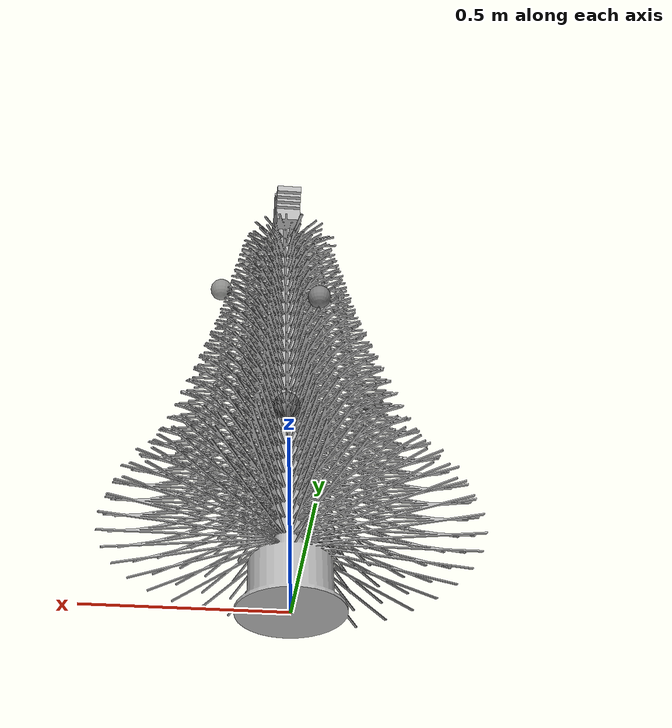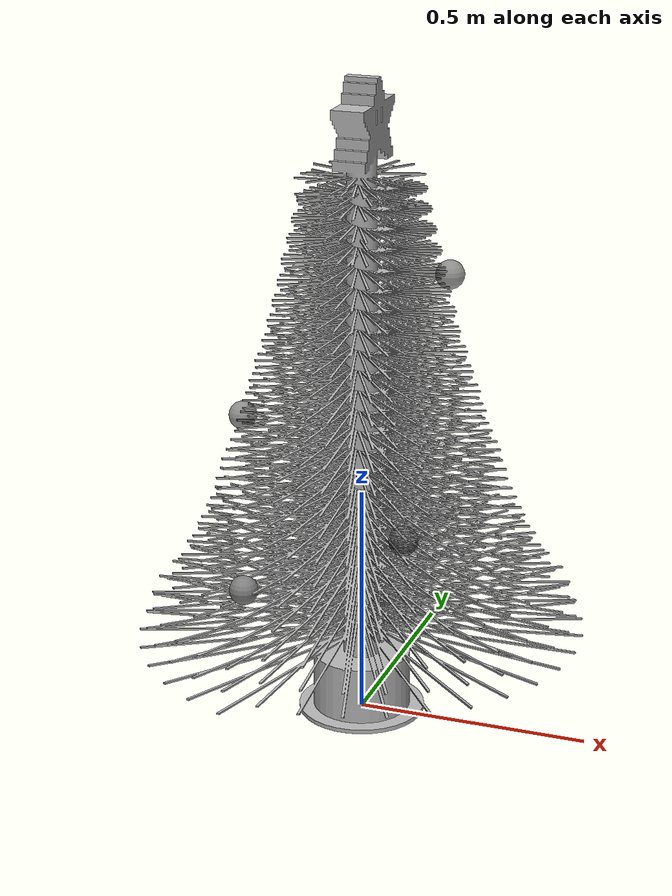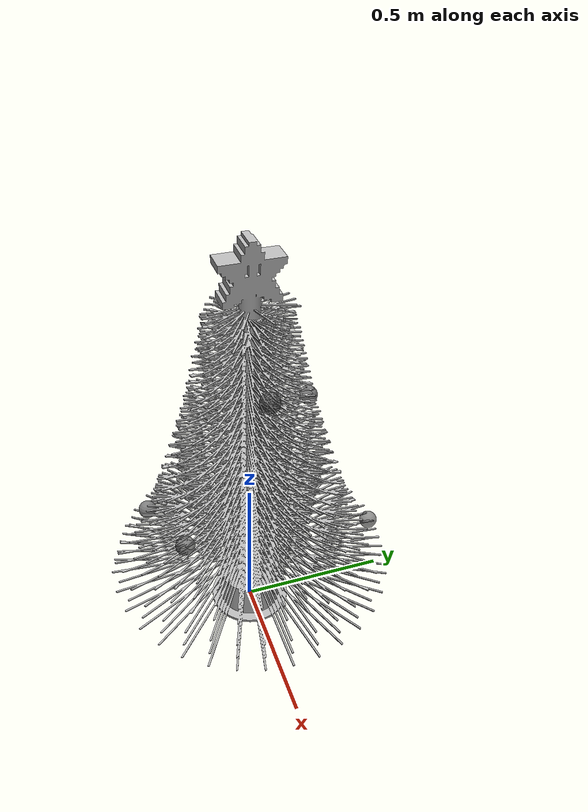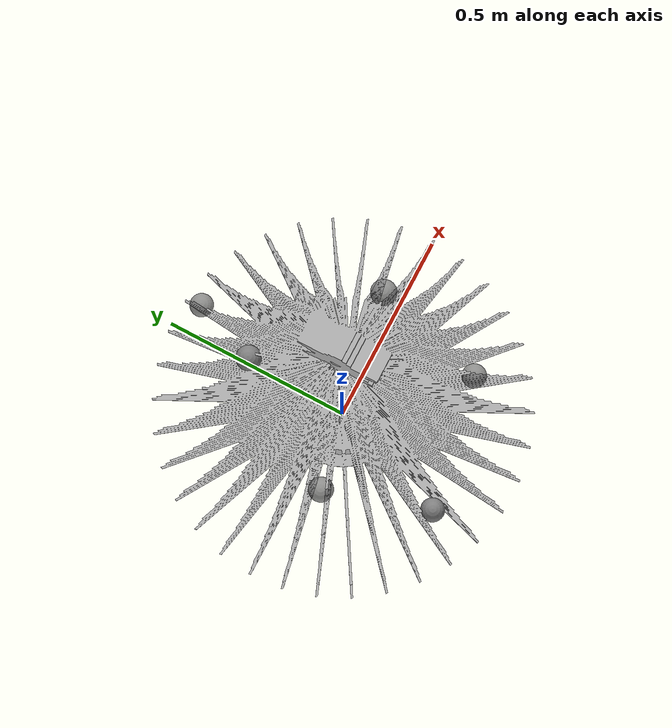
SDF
<?xml version="1.0"?>
<sdf version='1.6'>
  <!-- Draw Model -->
  <model name="christmas_tree">
    <static>true</static>

    <link name="tree">
      <pose>0 0 0 0 0 0</pose>

      <collision name="collision">
        <geometry>
          <mesh>
            <uri>model://christmas_tree/meshes/STL/tree.stl</uri>
          </mesh>
        </geometry>
      </collision>

      <visual name="visual">
        <geometry>
          <mesh>
            <uri>model://christmas_tree/meshes/DAE/tree.dae</uri>
          </mesh>
        </geometry>
      </visual>
    </link>

    <link name="light_source_red1">
      <pose>0.19 -0.003 1.0 0 0 0</pose>
      <light name='light' type='point'>
        <cast_shadows>true</cast_shadows>
        <diffuse>50 0 0 255</diffuse>
        <specular>0 0 0 0</specular>
        <attenuation>
          <range>20.0</range>
          <constant>0.10</constant>
          <linear>0.50</linear>
          <quadratic>0.00</quadratic>
        </attenuation>
      </light>

      <visual name='visual'>
        <geometry>
          <sphere>
            <radius>0.03</radius>
          </sphere>
        </geometry>
        <transparency>0.2</transparency>
        <material>
          <lighting>true</lighting>
          <ambient>1 0 0 1</ambient>
          <diffuse>0.5 0.5 0.5 1</diffuse>
          <specular>1 1 1 1</specular>
          <emissive>0.5 0 0 1</emissive>
        </material>
      </visual>
    </link>

    <link name="light_source_red2">
      <pose>0.18 -0.26 0.52 0 0 0</pose>
      <light name='light' type='point'>
        <cast_shadows>true</cast_shadows>
        <diffuse>50 0 0 255</diffuse>
        <specular>0 0 0 0</specular>
        <attenuation>
          <range>20.0</range>
          <constant>0.10</constant>
          <linear>0.50</linear>
          <quadratic>0.00</quadratic>
        </attenuation>
      </light>

      <visual name='visual'>
        <geometry>
          <sphere>
            <radius>0.03</radius>
          </sphere>
        </geometry>
        <transparency>0.2</transparency>
        <material>
          <lighting>true</lighting>
          <ambient>1 0 0 1</ambient>
          <diffuse>0.5 0.5 0.5 1</diffuse>
          <specular>1 1 1 1</specular>
          <emissive>0.5 0 0 1</emissive>
        </material>
      </visual>
    </link>

    <link name="light_source_green1">
      <pose>-0.14 -0.32 0.39 0 0 0</pose>
      <light name='light' type='point'>
        <cast_shadows>true</cast_shadows>
        <diffuse>0 50 0 255</diffuse>
        <specular>0 0 0 0</specular>
        <attenuation>
          <range>20.0</range>
          <constant>0.10</constant>
          <linear>0.50</linear>
          <quadratic>0.00</quadratic>
        </attenuation>
      </light>

      <visual name='visual'>
        <geometry>
          <sphere>
            <radius>0.03</radius>
          </sphere>
        </geometry>
        <transparency>0</transparency>
        <material>
          <lighting>true</lighting>
          <ambient>0 1 0 1</ambient>
          <diffuse>0.5 0.5 0.5 1</diffuse>
          <specular>1 1 1 1</specular>
          <emissive>0 0.5 0 1</emissive>
        </material>
      </visual>
    </link>

    <link name="light_source_green2">
      <pose>-0.06 0.21 0.81 0 0 0</pose>
      <light name='light' type='point'>
        <cast_shadows>true</cast_shadows>
        <diffuse>0 50 0 255</diffuse>
        <specular>0 0 0 0</specular>
        <attenuation>
          <range>20.0</range>
          <constant>0.10</constant>
          <linear>0.50</linear>
          <quadratic>0.00</quadratic>
        </attenuation>
      </light>

      <visual name='visual'>
        <geometry>
          <sphere>
            <radius>0.03</radius>
          </sphere>
        </geometry>
        <transparency>0</transparency>
        <material>
          <lighting>true</lighting>
          <ambient>0 1 0 1</ambient>
          <diffuse>0.5 0.5 0.5 1</diffuse>
          <specular>1 1 1 1</specular>
          <emissive>0 0.5 0 1</emissive>
        </material>
      </visual>
    </link>

    <link name="light_source_blue1">
      <pose>-0.24 -0.07 0.67 0 0 0</pose>
      <light name='light' type='point'>
        <cast_shadows>true</cast_shadows>
        <diffuse>0 0 50 255</diffuse>
        <specular>0 0 0 0</specular>
        <attenuation>
          <range>20.0</range>
          <constant>0.10</constant>
          <linear>0.50</linear>
          <quadratic>0.00</quadratic>
        </attenuation>
      </light>

      <visual name='visual'>
        <geometry>
          <sphere>
            <radius>0.03</radius>
          </sphere>
        </geometry>
        <transparency>0.2</transparency>
        <material>
          <lighting>true</lighting>
          <ambient>0 0 1 1</ambient>
          <diffuse>0.5 0.5 0.5 1</diffuse>
          <specular>1 1 1 1</specular>
          <emissive>0 0 0.5 1</emissive>
        </material>
      </visual>
    </link>

    <link name="light_source_blue2">
      <pose>0.05 0.42 0.30 0 0 0</pose>
      <light name='light' type='point'>
        <cast_shadows>true</cast_shadows>
        <diffuse>0 0 50 255</diffuse>
        <specular>0 0 0 0</specular>
        <attenuation>
          <range>20.0</range>
          <constant>0.10</constant>
          <linear>0.50</linear>
          <quadratic>0.00</quadratic>
        </attenuation>
      </light>

      <visual name='visual'>
        <geometry>
          <sphere>
            <radius>0.03</radius>
          </sphere>
        </geometry>
        <transparency>0.2</transparency>
        <material>
          <lighting>true</lighting>
          <ambient>0 0 1 1</ambient>
          <diffuse>0.5 0.5 0.5 1</diffuse>
          <specular>1 1 1 1</specular>
          <emissive>0 0 0.5 1</emissive>
        </material>
      </visual>
    </link>
  </model>
</sdf>
